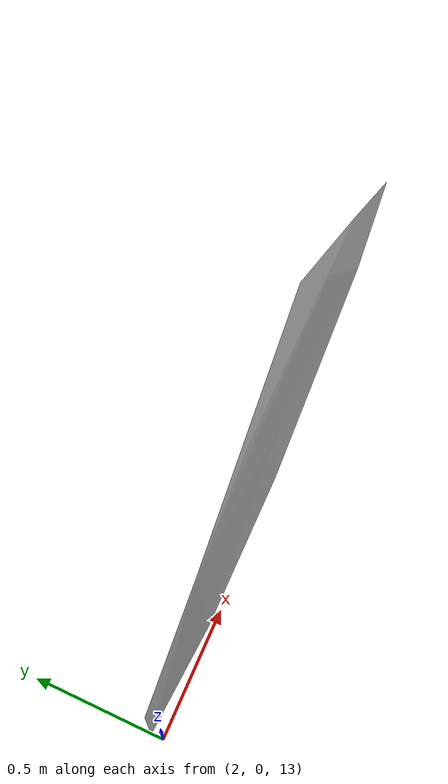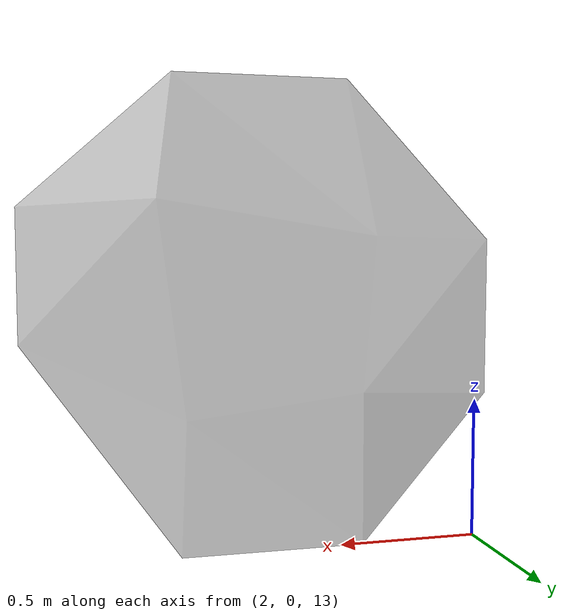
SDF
<?xml version="1.0" ?>
<sdf version="1.9">
  <model name="flowers_01">
    <static>true</static>
    <link name="link">
      <collision name="collision">
        <pose>0 0 0.2 0 0 0</pose>
        <geometry>
          <box>
            <size>0.5 0.5 0.4</size>
          </box>
        </geometry>
      </collision>
      <visual name="visual">
        <geometry>
          <mesh>
            <uri>model://flowers_01/meshes/Flowers-01.obj</uri>
          </mesh>
        </geometry>
      </visual>
    </link>
  </model>
</sdf>
